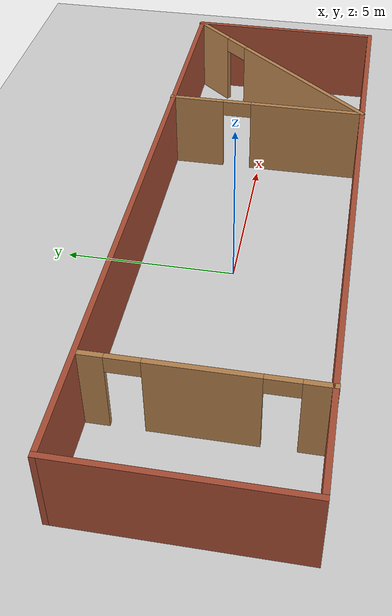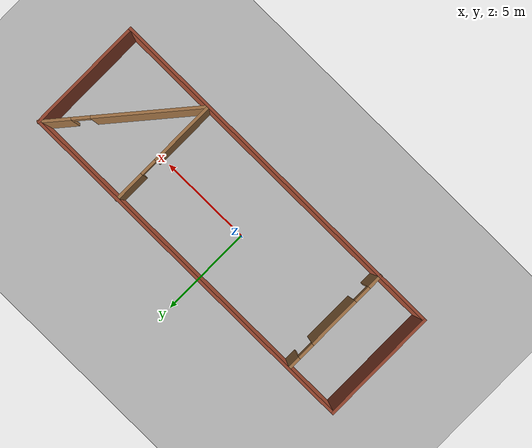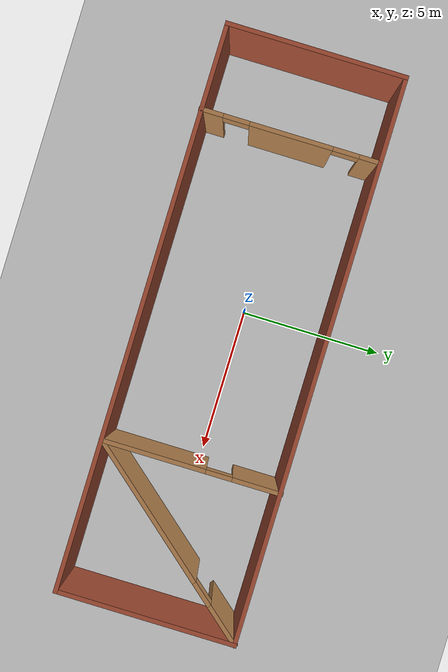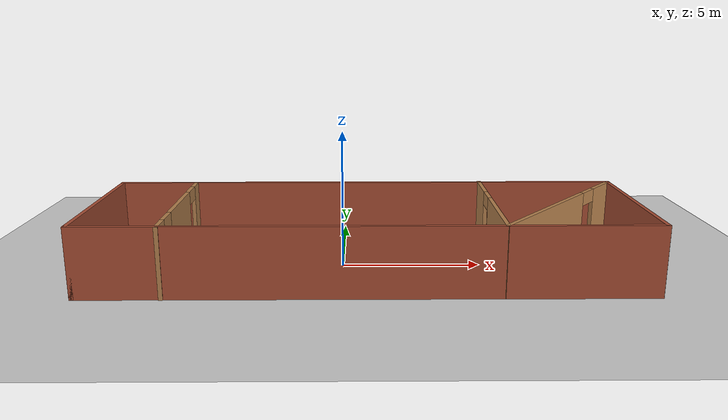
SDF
<sdf version="1.7">
 <world name="default">
  <light name="sun" type="directional">
   <pose>0 0 10 0 -0 0</pose>
   <diffuse>0.8 0.8 0.8 1</diffuse>
   <specular>0.2 0.2 0.2 1</specular>
   <attenuation>
    <range>1000</range>
    <constant>0.9</constant>
    <linear>0.01</linear>
    <quadratic>0.001</quadratic>
   </attenuation>
   <direction>-0.5 0.1 -0.9</direction>
   <spot><inner_angle>0</inner_angle><outer_angle>0</outer_angle><falloff>0</falloff></spot>
  </light>
  <model name="ground_plane">
   <static>1</static>
   <link name="link">
    <collision name="collision">
     <geometry><plane><normal>0 0 1</normal><size>100 100</size></plane></geometry>
     <surface>
      <contact><collide_bitmask>65535</collide_bitmask></contact>
      <friction><ode><mu>100</mu><mu2>50</mu2></ode></friction>
     </surface>
    </collision>
    <visual name="visual">
     <cast_shadows>0</cast_shadows>
     <geometry><plane><normal>0 0 1</normal><size>100 100</size></plane></geometry>
     <material>
      <script><uri>file://media/materials/scripts/gazebo.material</uri><name>Gazebo/Grey</name></script>
     </material>
    </visual>
   </link>
  </model>
  <gravity>0 0 -9.8</gravity>
  <magnetic_field>6e-06 2.3e-05 -4.2e-05</magnetic_field>
  <atmosphere type="adiabatic"/>
  <physics type="ode">
   <max_step_size>0.001</max_step_size>
   <real_time_factor>1</real_time_factor>
   <real_time_update_rate>1000</real_time_update_rate>
  </physics>
  <scene><ambient>0.4 0.4 0.4 1</ambient><background>0.7 0.7 0.7 1</background><shadows>1</shadows></scene>
  <spherical_coordinates>
   <surface_model>EARTH_WGS84</surface_model>
   <latitude_deg>0</latitude_deg>
   <longitude_deg>0</longitude_deg>
   <elevation>0</elevation>
   <heading_deg>0</heading_deg>
  </spherical_coordinates>
  <model name="house4">
   <pose>0.877464 -0.191931 0 0 -0 0</pose>
   <link name="Wall_0">
    <collision name="Wall_0_Collision">
     <geometry><box><size>6.25 0.15 2.5</size></box></geometry>
     <pose>0 0 1.25 0 -0 0</pose>
    </collision>
    <visual name="Wall_0_Visual">
     <pose>0 0 1.25 0 -0 0</pose>
     <geometry><box><size>6.25 0.15 2.5</size></box></geometry>
     <material>
      <script><uri>file://media/materials/scripts/gazebo.material</uri><name>Gazebo/Bricks</name></script>
      <ambient>1 1 1 1</ambient>
     </material>
     <meta><layer>0</layer></meta>
    </visual>
    <pose>-9.69035 -0.008089 0 0 -0 -1.5708</pose>
   </link>
   <link name="Wall_1">
    <collision name="Wall_1_Collision">
     <geometry><box><size>19.5 0.15 2.5</size></box></geometry>
     <pose>0 0 1.25 0 -0 0</pose>
    </collision>
    <visual name="Wall_1_Visual">
     <pose>0 0 1.25 0 -0 0</pose>
     <geometry><box><size>19.5 0.15 2.5</size></box></geometry>
     <material>
      <script><uri>file://media/materials/scripts/gazebo.material</uri><name>Gazebo/Bricks</name></script>
      <ambient>1 1 1 1</ambient>
     </material>
     <meta><layer>0</layer></meta>
    </visual>
    <pose>-0.015351 -3.05809 0 0 -0 0</pose>
   </link>
   <link name="Wall_2">
    <collision name="Wall_2_Collision">
     <geometry><box><size>6.25 0.15 2.5</size></box></geometry>
     <pose>0 0 1.25 0 -0 0</pose>
    </collision>
    <visual name="Wall_2_Visual">
     <pose>0 0 1.25 0 -0 0</pose>
     <geometry><box><size>6.25 0.15 2.5</size></box></geometry>
     <material>
      <script><uri>file://media/materials/scripts/gazebo.material</uri><name>Gazebo/Bricks</name></script>
      <ambient>1 1 1 1</ambient>
     </material>
     <meta><layer>0</layer></meta>
    </visual>
    <pose>9.65965 -0.008089 0 0 -0 1.5708</pose>
   </link>
   <link name="Wall_3">
    <collision name="Wall_3_Collision">
     <geometry><box><size>19.5 0.15 2.5</size></box></geometry>
     <pose>0 0 1.25 0 -0 0</pose>
    </collision>
    <visual name="Wall_3_Visual">
     <pose>0 0 1.25 0 -0 0</pose>
     <geometry><box><size>19.5 0.15 2.5</size></box></geometry>
     <material>
      <script><uri>file://media/materials/scripts/gazebo.material</uri><name>Gazebo/Bricks</name></script>
      <ambient>1 1 1 1</ambient>
     </material>
     <meta><layer>0</layer></meta>
    </visual>
    <pose>-0.015351 3.04191 0 0 -0 3.14159</pose>
   </link>
   <link name="Wall_5">
    <pose>4.50983 0.012025 0 0 -0 -1.5708</pose>
    <visual name="Wall_5_Visual_0">
     <pose>-2.25654 0 1.25 0 -0 0</pose>
     <geometry><box><size>1.73693 0.15 2.5</size></box></geometry>
     <material>
      <script><uri>file://media/materials/scripts/gazebo.material</uri><name>Gazebo/Wood</name></script>
      <ambient>1 1 1 1</ambient>
     </material>
     <meta><layer>0</layer></meta>
    </visual>
    <collision name="Wall_5_Collision_0">
     <geometry><box><size>1.73693 0.15 2.5</size></box></geometry>
     <pose>-2.25654 0 1.25 0 -0 0</pose>
    </collision>
    <visual name="Wall_5_Visual_1">
     <pose>1.31846 0 1.25 0 -0 0</pose>
     <geometry><box><size>3.61307 0.15 2.5</size></box></geometry>
     <material>
      <script><uri>file://media/materials/scripts/gazebo.material</uri><name>Gazebo/Wood</name></script>
      <ambient>1 1 1 1</ambient>
     </material>
     <meta><layer>0</layer></meta>
    </visual>
    <collision name="Wall_5_Collision_1">
     <geometry><box><size>3.61307 0.15 2.5</size></box></geometry>
     <pose>1.31846 0 1.25 0 -0 0</pose>
    </collision>
    <visual name="Wall_5_Visual_2">
     <pose>-0.938075 0 2.25 0 -0 0</pose>
     <geometry><box><size>0.9 0.15 0.5</size></box></geometry>
     <material>
      <script><uri>file://media/materials/scripts/gazebo.material</uri><name>Gazebo/Wood</name></script>
      <ambient>1 1 1 1</ambient>
     </material>
     <meta><layer>0</layer></meta>
    </visual>
    <collision name="Wall_5_Collision_2">
     <geometry><box><size>0.9 0.15 0.5</size></box></geometry>
     <pose>-0.938075 0 2.25 0 -0 0</pose>
    </collision>
   </link>
   <link name="Wall_6">
    <pose>7.08474 0.001968 0 0 -0 0.868032</pose>
    <visual name="Wall_6_Visual_0">
     <pose>-1.24481 0 1.25 0 -0 0</pose>
     <geometry><box><size>5.62818 0.15 2.5</size></box></geometry>
     <material>
      <script><uri>file://media/materials/scripts/gazebo.material</uri><name>Gazebo/Wood</name></script>
      <ambient>1 1 1 1</ambient>
     </material>
     <meta><layer>0</layer></meta>
    </visual>
    <collision name="Wall_6_Collision_0">
     <geometry><box><size>5.62818 0.15 2.5</size></box></geometry>
     <pose>-1.24481 0 1.25 0 -0 0</pose>
    </collision>
    <visual name="Wall_6_Visual_1">
     <pose>3.26409 0 1.25 0 -0 0</pose>
     <geometry><box><size>1.58961 0.15 2.5</size></box></geometry>
     <material>
      <script><uri>file://media/materials/scripts/gazebo.material</uri><name>Gazebo/Wood</name></script>
      <ambient>1 1 1 1</ambient>
     </material>
     <meta><layer>0</layer></meta>
    </visual>
    <collision name="Wall_6_Collision_1">
     <geometry><box><size>1.58961 0.15 2.5</size></box></geometry>
     <pose>3.26409 0 1.25 0 -0 0</pose>
    </collision>
    <visual name="Wall_6_Visual_2">
     <pose>2.01928 0 2.25 0 -0 0</pose>
     <geometry><box><size>0.9 0.15 0.5</size></box></geometry>
     <material>
      <script><uri>file://media/materials/scripts/gazebo.material</uri><name>Gazebo/Wood</name></script>
      <ambient>1 1 1 1</ambient>
     </material>
     <meta><layer>0</layer></meta>
    </visual>
    <collision name="Wall_6_Collision_2">
     <geometry><box><size>0.9 0.15 0.5</size></box></geometry>
     <pose>2.01928 0 2.25 0 -0 0</pose>
    </collision>
   </link>
   <link name="Wall_8">
    <pose>-6.77388 -0.022615 0 0 -0 1.5708</pose>
    <visual name="Wall_8_Visual_0">
     <pose>-2.70909 0 1.25 0 -0 0</pose>
     <geometry><box><size>0.831814 0.15 2.5</size></box></geometry>
     <material>
      <script><uri>file://media/materials/scripts/gazebo.material</uri><name>Gazebo/Wood</name></script>
      <ambient>1 1 1 1</ambient>
     </material>
     <meta><layer>0</layer></meta>
    </visual>
    <collision name="Wall_8_Collision_0">
     <geometry><box><size>0.831814 0.15 2.5</size></box></geometry>
     <pose>-2.70909 0 1.25 0 -0 0</pose>
    </collision>
    <visual name="Wall_8_Visual_1">
     <pose>0.027377 0 1.25 0 -0 0</pose>
     <geometry><box><size>2.84112 0.15 2.5</size></box></geometry>
     <material>
      <script><uri>file://media/materials/scripts/gazebo.material</uri><name>Gazebo/Wood</name></script>
      <ambient>1 1 1 1</ambient>
     </material>
     <meta><layer>0</layer></meta>
    </visual>
    <collision name="Wall_8_Collision_1">
     <geometry><box><size>2.84112 0.15 2.5</size></box></geometry>
     <pose>0.027377 0 1.25 0 -0 0</pose>
    </collision>
    <visual name="Wall_8_Visual_2">
     <pose>2.73647 0 1.25 0 -0 0</pose>
     <geometry><box><size>0.777061 0.15 2.5</size></box></geometry>
     <material>
      <script><uri>file://media/materials/scripts/gazebo.material</uri><name>Gazebo/Wood</name></script>
      <ambient>1 1 1 1</ambient>
     </material>
     <meta><layer>0</layer></meta>
    </visual>
    <collision name="Wall_8_Collision_2">
     <geometry><box><size>0.777061 0.15 2.5</size></box></geometry>
     <pose>2.73647 0 1.25 0 -0 0</pose>
    </collision>
    <visual name="Wall_8_Visual_3">
     <pose>-1.84319 0 2.25 0 -0 0</pose>
     <geometry><box><size>0.9 0.15 0.5</size></box></geometry>
     <material>
      <script><uri>file://media/materials/scripts/gazebo.material</uri><name>Gazebo/Wood</name></script>
      <ambient>1 1 1 1</ambient>
     </material>
     <meta><layer>0</layer></meta>
    </visual>
    <collision name="Wall_8_Collision_3">
     <geometry><box><size>0.9 0.15 0.5</size></box></geometry>
     <pose>-1.84319 0 2.25 0 -0 0</pose>
    </collision>
    <visual name="Wall_8_Visual_4">
     <pose>1.89794 0 2.25 0 -0 0</pose>
     <geometry><box><size>0.9 0.15 0.5</size></box></geometry>
     <material>
      <script><uri>file://media/materials/scripts/gazebo.material</uri><name>Gazebo/Wood</name></script>
      <ambient>1 1 1 1</ambient>
     </material>
     <meta><layer>0</layer></meta>
    </visual>
    <collision name="Wall_8_Collision_4">
     <geometry><box><size>0.9 0.15 0.5</size></box></geometry>
     <pose>1.89794 0 2.25 0 -0 0</pose>
    </collision>
   </link>
   <static>1</static>
  </model>
 </world>
</sdf>
